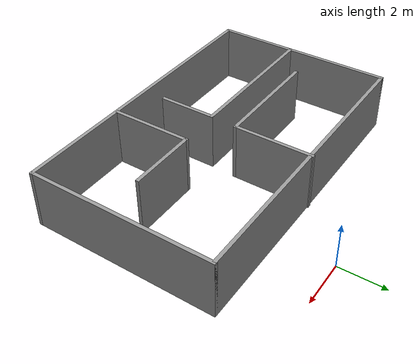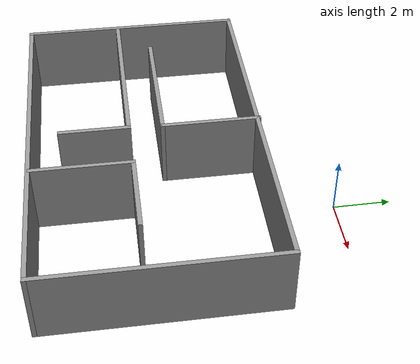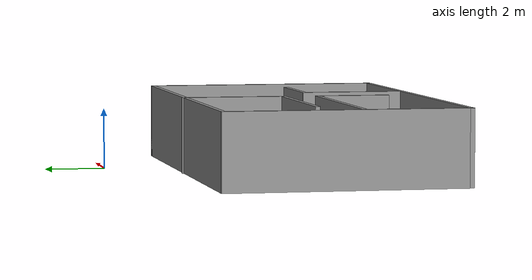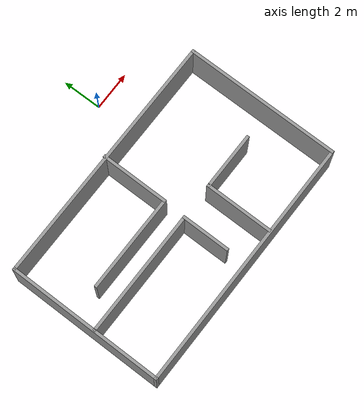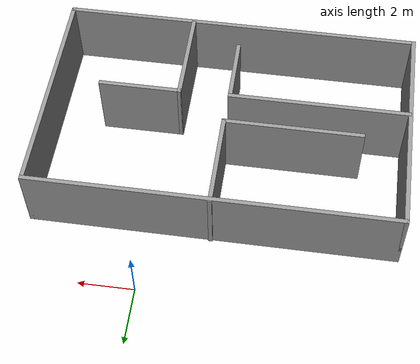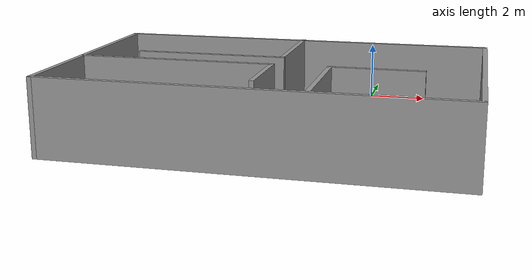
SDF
<?xml version='1.0'?>
<sdf version='1.7'>
  <model name='room'>
    <pose>-2.275 -5.1525 0 0 -0 0</pose>
    <link name='Wall_0'>
      <collision name='Wall_0_Collision'>
        <geometry>
          <box>
            <size>13 0.15 2.5</size>
          </box>
        </geometry>
        <pose>0 0 1.25 0 -0 0</pose>
      </collision>
      <visual name='Wall_0_Visual'>
        <pose>0 0 1.25 0 -0 0</pose>
        <geometry>
          <box>
            <size>13 0.15 2.5</size>
          </box>
        </geometry>
        <material>
          <script>
            <uri>file://media/materials/scripts/gazebo.material</uri>
            <name>Gazebo/Grey</name>
          </script>
          <ambient>1 1 1 1</ambient>
        </material>
        <meta>
          <layer>0</layer>
        </meta>
      </visual>
      <pose>0 2.7725 0 0 -0 0</pose>
    </link>
    <link name='Wall_1'>
      <collision name='Wall_1_Collision'>
        <geometry>
          <box>
            <size>8 0.15 2.5</size>
          </box>
        </geometry>
        <pose>0 0 1.25 0 -0 0</pose>
      </collision>
      <visual name='Wall_1_Visual'>
        <pose>0 0 1.25 0 -0 0</pose>
        <geometry>
          <box>
            <size>8 0.15 2.5</size>
          </box>
        </geometry>
        <material>
          <script>
            <uri>file://media/materials/scripts/gazebo.material</uri>
            <name>Gazebo/Grey</name>
          </script>
          <ambient>1 1 1 1</ambient>
        </material>
        <meta>
          <layer>0</layer>
        </meta>
      </visual>
      <pose>6.425 -1.1525 0 0 -0 -1.5708</pose>
    </link>
    <link name='Wall_11'>
      <collision name='Wall_11_Collision'>
        <geometry>
          <box>
            <size>3.5 0.15 2.5</size>
          </box>
        </geometry>
        <pose>0 0 1.25 0 -0 0</pose>
      </collision>
      <visual name='Wall_11_Visual'>
        <pose>0 0 1.25 0 -0 0</pose>
        <geometry>
          <box>
            <size>3.5 0.15 2.5</size>
          </box>
        </geometry>
        <material>
          <script>
            <uri>file://media/materials/scripts/gazebo.material</uri>
            <name>Gazebo/Grey</name>
          </script>
          <ambient>1 1 1 1</ambient>
        </material>
        <meta>
          <layer>0</layer>
        </meta>
      </visual>
      <pose>1.795 -3.3325 0 0 -0 1.5708</pose>
    </link>
    <link name='Wall_12'>
      <collision name='Wall_12_Collision'>
        <geometry>
          <box>
            <size>3 0.15 2.5</size>
          </box>
        </geometry>
        <pose>0 0 1.25 0 -0 0</pose>
      </collision>
      <visual name='Wall_12_Visual'>
        <pose>0 0 1.25 0 -0 0</pose>
        <geometry>
          <box>
            <size>3 0.15 2.5</size>
          </box>
        </geometry>
        <material>
          <script>
            <uri>file://media/materials/scripts/gazebo.material</uri>
            <name>Gazebo/Grey</name>
          </script>
          <ambient>1 1 1 1</ambient>
        </material>
        <meta>
          <layer>0</layer>
        </meta>
      </visual>
      <pose>3.22 -1.6575 0 0 -0 0</pose>
    </link>
    <link name='Wall_2'>
      <collision name='Wall_2_Collision'>
        <geometry>
          <box>
            <size>13 0.15 2.5</size>
          </box>
        </geometry>
        <pose>0 0 1.25 0 -0 0</pose>
      </collision>
      <visual name='Wall_2_Visual'>
        <pose>0 0 1.25 0 -0 0</pose>
        <geometry>
          <box>
            <size>13 0.15 2.5</size>
          </box>
        </geometry>
        <material>
          <script>
            <uri>file://media/materials/scripts/gazebo.material</uri>
            <name>Gazebo/Grey</name>
          </script>
          <ambient>1 1 1 1</ambient>
        </material>
        <meta>
          <layer>0</layer>
        </meta>
      </visual>
      <pose>0 -5.0775 0 0 -0 3.14159</pose>
    </link>
    <link name='Wall_3'>
      <collision name='Wall_3_Collision'>
        <geometry>
          <box>
            <size>8 0.15 2.5</size>
          </box>
        </geometry>
        <pose>0 0 1.25 0 -0 0</pose>
      </collision>
      <visual name='Wall_3_Visual'>
        <pose>0 0 1.25 0 -0 0</pose>
        <geometry>
          <box>
            <size>8 0.15 2.5</size>
          </box>
        </geometry>
        <material>
          <script>
            <uri>file://media/materials/scripts/gazebo.material</uri>
            <name>Gazebo/Grey</name>
          </script>
          <ambient>1 1 1 1</ambient>
        </material>
        <meta>
          <layer>0</layer>
        </meta>
      </visual>
      <pose>-6.425 -1.1525 0 0 -0 1.5708</pose>
    </link>
    <link name='Wall_5'>
      <collision name='Wall_5_Collision'>
        <geometry>
          <box>
            <size>3.5 0.15 2.5</size>
          </box>
        </geometry>
        <pose>0 0 1.25 0 -0 0</pose>
      </collision>
      <visual name='Wall_5_Visual'>
        <pose>0 0 1.25 0 -0 0</pose>
        <geometry>
          <box>
            <size>3.5 0.15 2.5</size>
          </box>
        </geometry>
        <material>
          <script>
            <uri>file://media/materials/scripts/gazebo.material</uri>
            <name>Gazebo/Grey</name>
          </script>
          <ambient>1 1 1 1</ambient>
        </material>
        <meta>
          <layer>0</layer>
        </meta>
      </visual>
      <pose>0.035 1.1475 0 0 -0 -1.5708</pose>
    </link>
    <link name='Wall_6'>
      <collision name='Wall_6_Collision'>
        <geometry>
          <box>
            <size>5 0.15 2.5</size>
          </box>
        </geometry>
        <pose>0 0 1.25 0 -0 0</pose>
      </collision>
      <visual name='Wall_6_Visual'>
        <pose>0 0 1.25 0 -0 0</pose>
        <geometry>
          <box>
            <size>5 0.15 2.5</size>
          </box>
        </geometry>
        <material>
          <script>
            <uri>file://media/materials/scripts/gazebo.material</uri>
            <name>Gazebo/Grey</name>
          </script>
          <ambient>1 1 1 1</ambient>
        </material>
        <meta>
          <layer>0</layer>
        </meta>
      </visual>
      <pose>-2.39 -0.5275 0 0 -0 3.14159</pose>
    </link>
    <link name='Wall_8'>
      <collision name='Wall_8_Collision'>
        <geometry>
          <box>
            <size>6.5 0.15 2.5</size>
          </box>
        </geometry>
        <pose>0 0 1.25 0 -0 0</pose>
      </collision>
      <visual name='Wall_8_Visual'>
        <pose>0 0 1.25 0 -0 0</pose>
        <geometry>
          <box>
            <size>6.5 0.15 2.5</size>
          </box>
        </geometry>
        <material>
          <script>
            <uri>file://media/materials/scripts/gazebo.material</uri>
            <name>Gazebo/Grey</name>
          </script>
          <ambient>1 1 1 1</ambient>
        </material>
        <meta>
          <layer>0</layer>
        </meta>
      </visual>
      <pose>-3.2 -1.6875 0 0 -0 0</pose>
    </link>
    <link name='Wall_9'>
      <collision name='Wall_9_Collision'>
        <geometry>
          <box>
            <size>2.5 0.15 2.5</size>
          </box>
        </geometry>
        <pose>0 0 1.25 0 -0 0</pose>
      </collision>
      <visual name='Wall_9_Visual'>
        <pose>0 0 1.25 0 -0 0</pose>
        <geometry>
          <box>
            <size>2.5 0.15 2.5</size>
          </box>
        </geometry>
        <material>
          <script>
            <uri>file://media/materials/scripts/gazebo.material</uri>
            <name>Gazebo/Grey</name>
          </script>
          <ambient>1 1 1 1</ambient>
        </material>
        <meta>
          <layer>0</layer>
        </meta>
      </visual>
      <pose>-0.025 -2.8625 0 0 -0 -1.5708</pose>
    </link>
    <static>1</static>
  </model>
</sdf>
